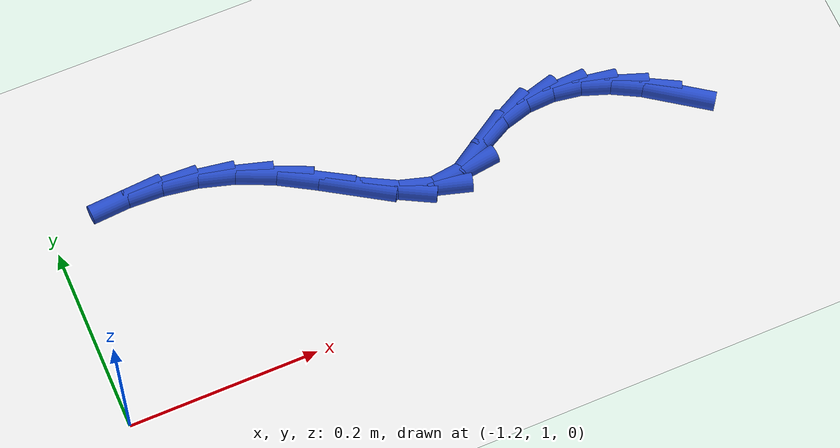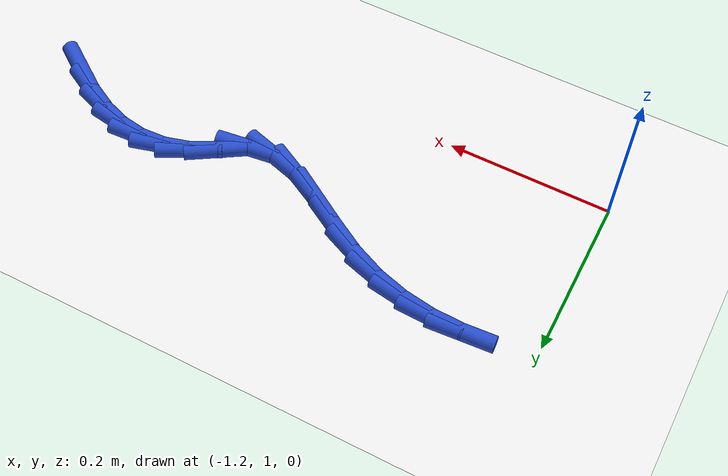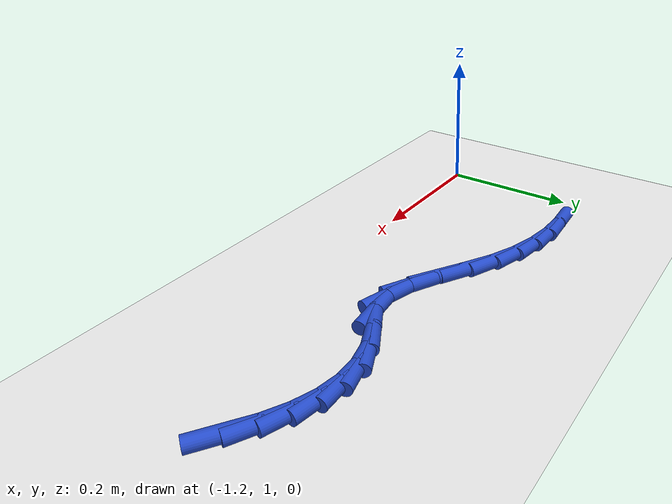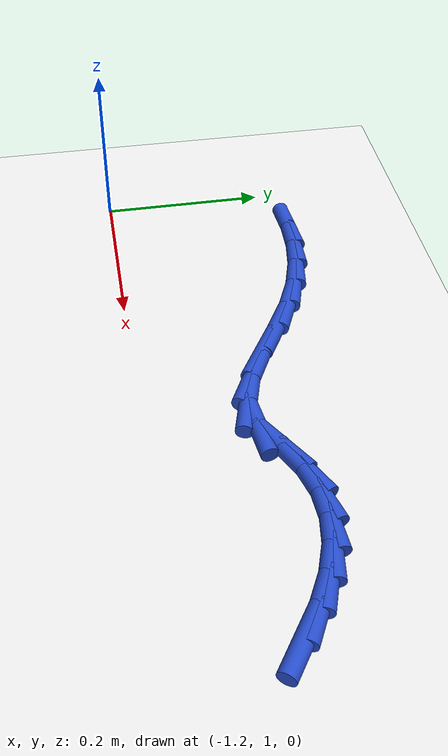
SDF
<sdf version="1.6">
 <world name="default">
  <model name="ground_plane">
   <static>1</static>
   <link name="link">
    <collision name="collision">
     <geometry><plane><normal>0 0 1</normal><size>100 100</size></plane></geometry>
     <surface><friction><ode><mu>100</mu><mu2>50</mu2></ode></friction></surface>
    </collision>
    <visual name="visual">
     <cast_shadows>0</cast_shadows>
     <geometry><plane><normal>0 0 1</normal><size>100 100</size></plane></geometry>
     <material>
      <script><uri>file://media/materials/scripts/gazebo.material</uri><name>Gazebo/WhiteGlow</name></script>
     </material>
    </visual>
   </link>
  </model>
  <model name="line">
   <link name="link_31">
    <pose>-0.5502787662777112 1.1152054499956319 0.01 0 1.57 -0.6195526562315516</pose>
    <collision name="collision">
     <geometry><cylinder><radius>0.01</radius><length>0.08</length></cylinder></geometry>
    </collision>
    <visual name="visual">
     <material>
      <script><name>Gazebo/Blue</name><uri>file://media/materials/scripts/gazebo.material</uri></script>
     </material>
     <geometry><cylinder><radius>0.01</radius><length>0.08</length></cylinder></geometry>
    </visual>
   </link>
   <link name="link_32">
    <pose>-0.5795541223142812 1.136085625843602 0.01 0 1.57 -0.4960008967441921</pose>
    <collision name="collision">
     <geometry><cylinder><radius>0.01</radius><length>0.08</length></cylinder></geometry>
    </collision>
    <visual name="visual">
     <material>
      <script><name>Gazebo/Blue</name><uri>file://media/materials/scripts/gazebo.material</uri></script>
     </material>
     <geometry><cylinder><radius>0.01</radius><length>0.08</length></cylinder></geometry>
    </visual>
   </link>
   <link name="link_33">
    <pose>-0.6091108047193043 1.1520793721333085 0.01 0 1.57 -0.3419835887315888</pose>
    <collision name="collision">
     <geometry><cylinder><radius>0.01</radius><length>0.08</length></cylinder></geometry>
    </collision>
    <visual name="visual">
     <material>
      <script><name>Gazebo/Blue</name><uri>file://media/materials/scripts/gazebo.material</uri></script>
     </material>
     <geometry><cylinder><radius>0.01</radius><length>0.08</length></cylinder></geometry>
    </visual>
   </link>
   <link name="link_34">
    <pose>-0.638910854673468 1.1626873031509715 0.01 0 1.57 -0.15611493687410552</pose>
    <collision name="collision">
     <geometry><cylinder><radius>0.01</radius><length>0.08</length></cylinder></geometry>
    </collision>
    <visual name="visual">
     <material>
      <script><name>Gazebo/Blue</name><uri>file://media/materials/scripts/gazebo.material</uri></script>
     </material>
     <geometry><cylinder><radius>0.01</radius><length>0.08</length></cylinder></geometry>
    </visual>
   </link>
   <link name="link_35">
    <pose>-0.6689163133574603 1.1674100331828123 0.01 0 1.57 0.05502218211995027</pose>
    <collision name="collision">
     <geometry><cylinder><radius>0.01</radius><length>0.08</length></cylinder></geometry>
    </collision>
    <visual name="visual">
     <material>
      <script><name>Gazebo/Blue</name><uri>file://media/materials/scripts/gazebo.material</uri></script>
     </material>
     <geometry><cylinder><radius>0.01</radius><length>0.08</length></cylinder></geometry>
    </visual>
   </link>
   <link name="link_36">
    <pose>-0.6990892219519687 1.165748176515052 0.01 0 1.57 0.2748792234774522</pose>
    <collision name="collision">
     <geometry><cylinder><radius>0.01</radius><length>0.08</length></cylinder></geometry>
    </collision>
    <visual name="visual">
     <material>
      <script><name>Gazebo/Blue</name><uri>file://media/materials/scripts/gazebo.material</uri></script>
     </material>
     <geometry><cylinder><radius>0.01</radius><length>0.08</length></cylinder></geometry>
    </visual>
   </link>
   <link name="link_37">
    <pose>-0.729391621637681 1.1572023474339108 0.01 0 1.57 0.48273416932443225</pose>
    <collision name="collision">
     <geometry><cylinder><radius>0.01</radius><length>0.08</length></cylinder></geometry>
    </collision>
    <visual name="visual">
     <material>
      <script><name>Gazebo/Blue</name><uri>file://media/materials/scripts/gazebo.material</uri></script>
     </material>
     <geometry><cylinder><radius>0.01</radius><length>0.08</length></cylinder></geometry>
    </visual>
   </link>
   <link name="link_38">
    <pose>-0.7597855535952849 1.1412731602256097 0.01 0 1.57 0.5669502036484709</pose>
    <collision name="collision">
     <geometry><cylinder><radius>0.01</radius><length>0.08</length></cylinder></geometry>
    </collision>
    <visual name="visual">
     <material>
      <script><name>Gazebo/Blue</name><uri>file://media/materials/scripts/gazebo.material</uri></script>
     </material>
     <geometry><cylinder><radius>0.01</radius><length>0.08</length></cylinder></geometry>
    </visual>
   </link>
   <link name="link_39">
    <pose>-0.7905588839530812 1.121680576080125 0.01 0 1.57 0.12630331599617128</pose>
    <collision name="collision">
     <geometry><cylinder><radius>0.01</radius><length>0.08</length></cylinder></geometry>
    </collision>
    <visual name="visual">
     <material>
      <script><name>Gazebo/Blue</name><uri>file://media/materials/scripts/gazebo.material</uri></script>
     </material>
     <geometry><cylinder><radius>0.01</radius><length>0.08</length></cylinder></geometry>
    </visual>
   </link>
   <link name="link_40">
    <pose>-0.8231798651433603 1.1175383884031536 0.01 0 1.57 -0.28693302493927386</pose>
    <collision name="collision">
     <geometry><cylinder><radius>0.01</radius><length>0.08</length></cylinder></geometry>
    </collision>
    <visual name="visual">
     <material>
      <script><name>Gazebo/Blue</name><uri>file://media/materials/scripts/gazebo.material</uri></script>
     </material>
     <geometry><cylinder><radius>0.01</radius><length>0.08</length></cylinder></geometry>
    </visual>
   </link>
   <link name="link_41">
    <pose>-0.8575336866154382 1.127675367712229 0.01 0 1.57 -0.4951000127802804</pose>
    <collision name="collision">
     <geometry><cylinder><radius>0.01</radius><length>0.08</length></cylinder></geometry>
    </collision>
    <visual name="visual">
     <material>
      <script><name>Gazebo/Blue</name><uri>file://media/materials/scripts/gazebo.material</uri></script>
     </material>
     <geometry><cylinder><radius>0.01</radius><length>0.08</length></cylinder></geometry>
    </visual>
   </link>
   <link name="link_42">
    <pose>-0.893195635019809 1.1469312883190548 0.01 0 1.57 -0.5659204765657412</pose>
    <collision name="collision">
     <geometry><cylinder><radius>0.01</radius><length>0.08</length></cylinder></geometry>
    </collision>
    <visual name="visual">
     <material>
      <script><name>Gazebo/Blue</name><uri>file://media/materials/scripts/gazebo.material</uri></script>
     </material>
     <geometry><cylinder><radius>0.01</radius><length>0.08</length></cylinder></geometry>
    </visual>
   </link>
   <link name="link_43">
    <pose>-0.9297409970069682 1.1701459245353345 0.01 0 1.57 -0.5366493144910013</pose>
    <collision name="collision">
     <geometry><cylinder><radius>0.01</radius><length>0.08</length></cylinder></geometry>
    </collision>
    <visual name="visual">
     <material>
      <script><name>Gazebo/Blue</name><uri>file://media/materials/scripts/gazebo.material</uri></script>
     </material>
     <geometry><cylinder><radius>0.01</radius><length>0.08</length></cylinder></geometry>
    </visual>
   </link>
   <link name="link_44">
    <pose>-0.9667450593738129 1.1921590527190467 0.01 0 1.57 -0.4216733075283665</pose>
    <collision name="collision">
     <geometry><cylinder><radius>0.01</radius><length>0.08</length></cylinder></geometry>
    </collision>
    <visual name="visual">
     <material>
      <script><name>Gazebo/Blue</name><uri>file://media/materials/scripts/gazebo.material</uri></script>
     </material>
     <geometry><cylinder><radius>0.01</radius><length>0.08</length></cylinder></geometry>
    </visual>
   </link>
   <link name="link_45">
    <pose>-1.0038543046584598 1.2088055572794447 0.01 0 1.57 -0.2866046705655975</pose>
    <collision name="collision">
     <geometry><cylinder><radius>0.01</radius><length>0.08</length></cylinder></geometry>
    </collision>
    <visual name="visual">
     <material>
      <script><name>Gazebo/Blue</name><uri>file://media/materials/scripts/gazebo.material</uri></script>
     </material>
     <geometry><cylinder><radius>0.01</radius><length>0.08</length></cylinder></geometry>
    </visual>
   </link>
   <link name="link_46">
    <pose>-1.0409892062057131 1.219749912051136 0.01 0 1.57 -0.15561622205311462</pose>
    <collision name="collision">
     <geometry><cylinder><radius>0.01</radius><length>0.08</length></cylinder></geometry>
    </collision>
    <visual name="visual">
     <material>
      <script><name>Gazebo/Blue</name><uri>file://media/materials/scripts/gazebo.material</uri></script>
     </material>
     <geometry><cylinder><radius>0.01</radius><length>0.08</length></cylinder></geometry>
    </visual>
   </link>
   <link name="link_47">
    <pose>-1.078136138515642 1.2255776961071945 0.01 0 1.57 -0.034897137562389546</pose>
    <collision name="collision">
     <geometry><cylinder><radius>0.01</radius><length>0.08</length></cylinder></geometry>
    </collision>
    <visual name="visual">
     <material>
      <script><name>Gazebo/Blue</name><uri>file://media/materials/scripts/gazebo.material</uri></script>
     </material>
     <geometry><cylinder><radius>0.01</radius><length>0.08</length></cylinder></geometry>
    </visual>
   </link>
   <link name="link_48">
    <pose>-1.1152814760883172 1.2268744885206933 0.01 0 1.57 0.0712128466700696</pose>
    <collision name="collision">
     <geometry><cylinder><radius>0.01</radius><length>0.08</length></cylinder></geometry>
    </collision>
    <visual name="visual">
     <material>
      <script><name>Gazebo/Blue</name><uri>file://media/materials/scripts/gazebo.material</uri></script>
     </material>
     <geometry><cylinder><radius>0.01</radius><length>0.08</length></cylinder></geometry>
    </visual>
   </link>
  </model>
 </world>
</sdf>
